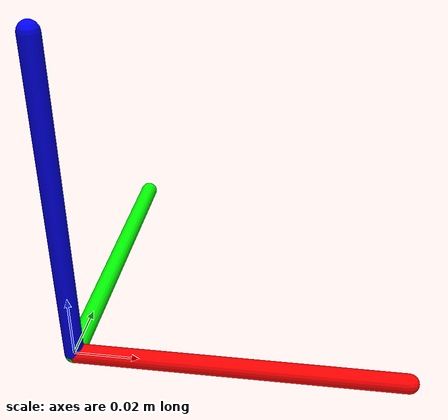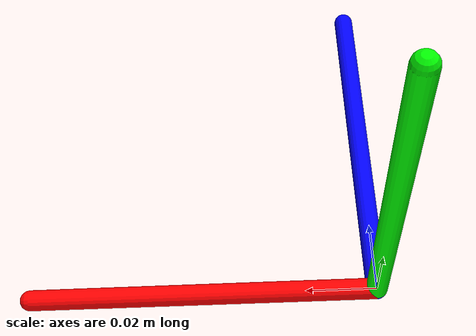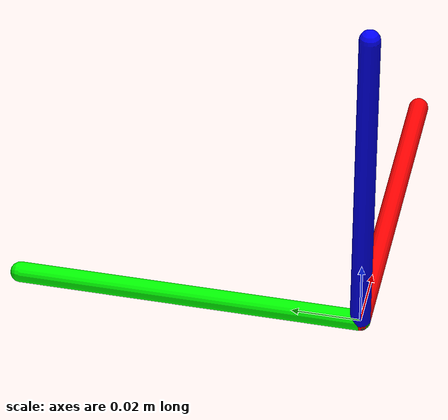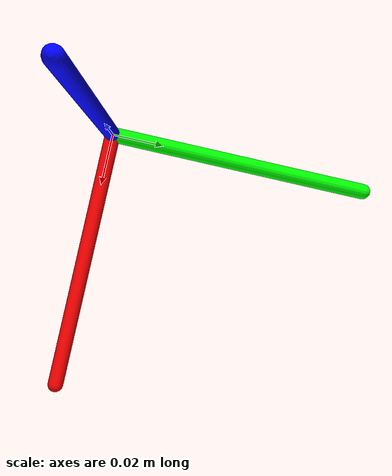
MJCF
<mujoco model="coordinate_frame">
    <worldbody>
        <body name="frame_origin">
            <geom type="capsule" fromto="0 0 0 0.1 0 0" size="0.003" rgba="1 0 0 1" contype="0" conaffinity="0"/>
            <geom type="capsule" fromto="0 0 0 0 0.1 0" size="0.003" rgba="0 1 0 1" contype="0" conaffinity="0"/>
            <geom type="capsule" fromto="0 0 0 0 0 0.1" size="0.003" rgba="0 0 1 1" contype="0" conaffinity="0"/>
        </body>
    </worldbody>
</mujoco>
